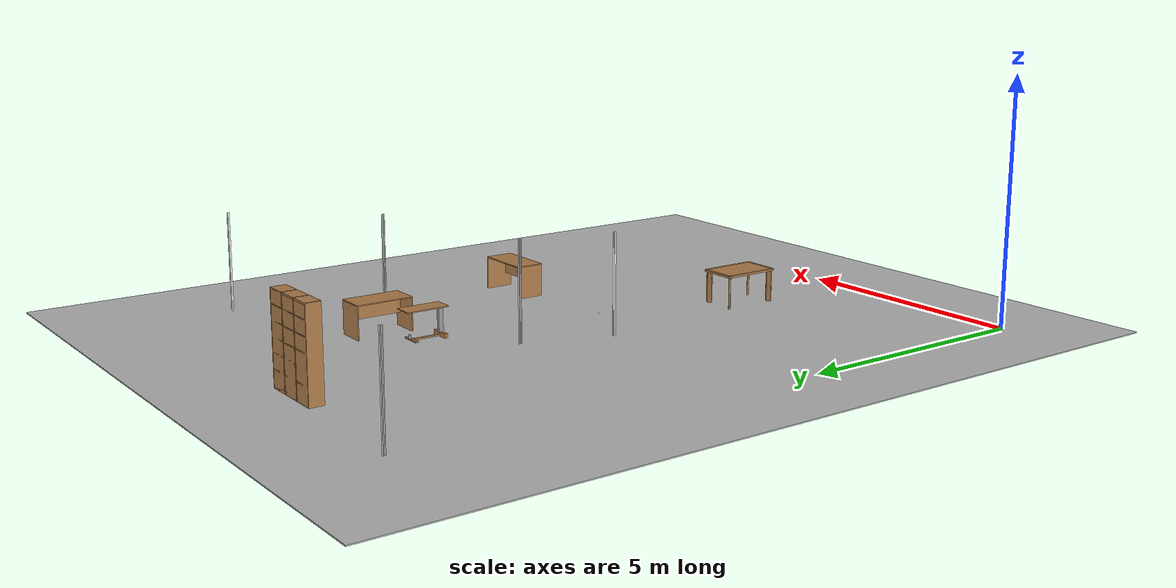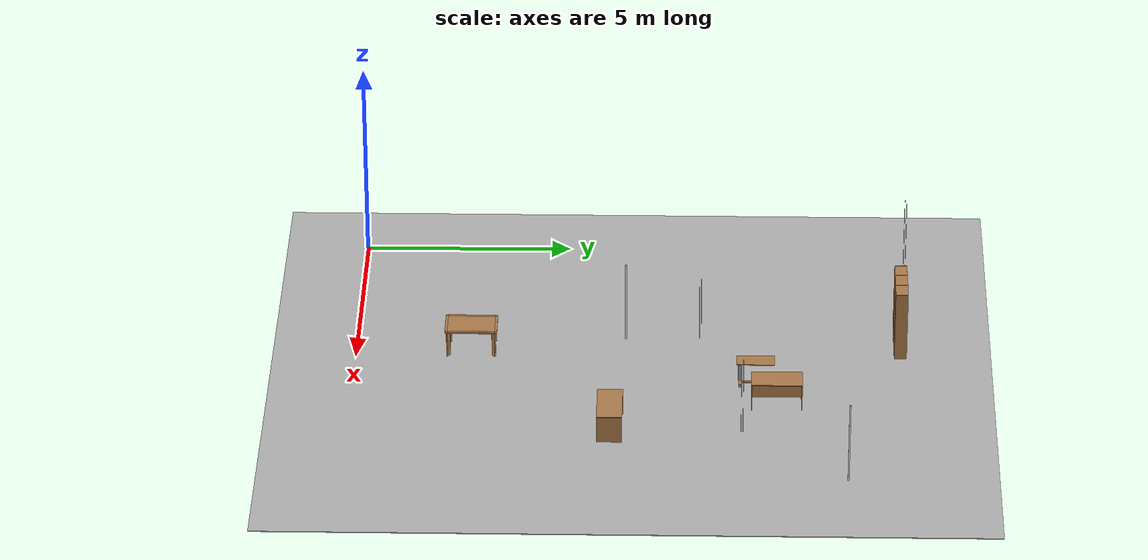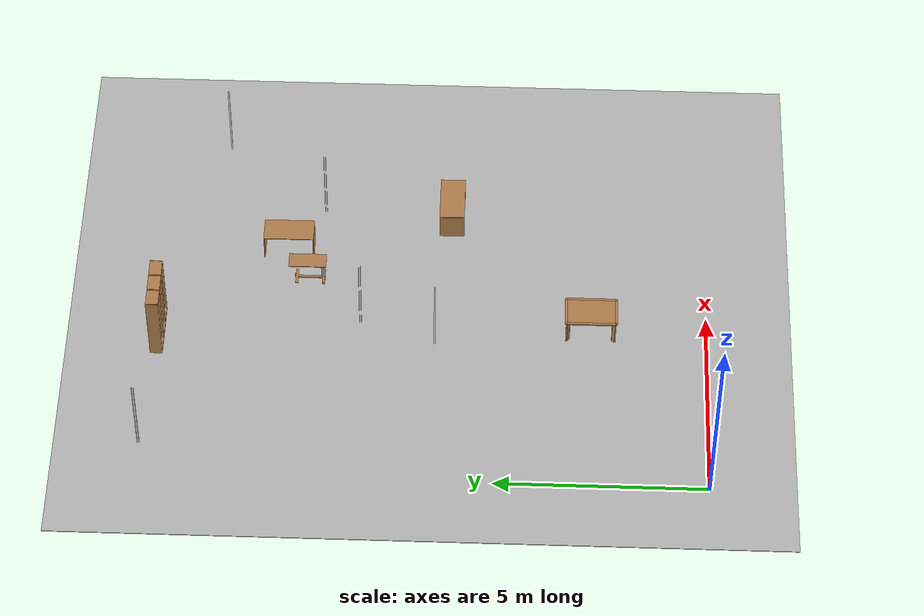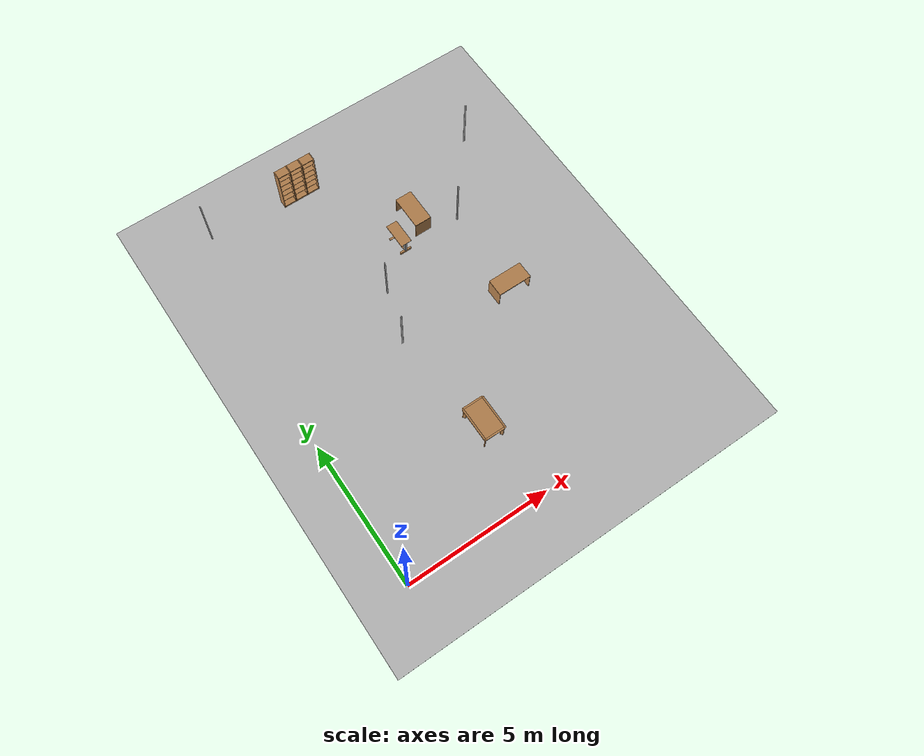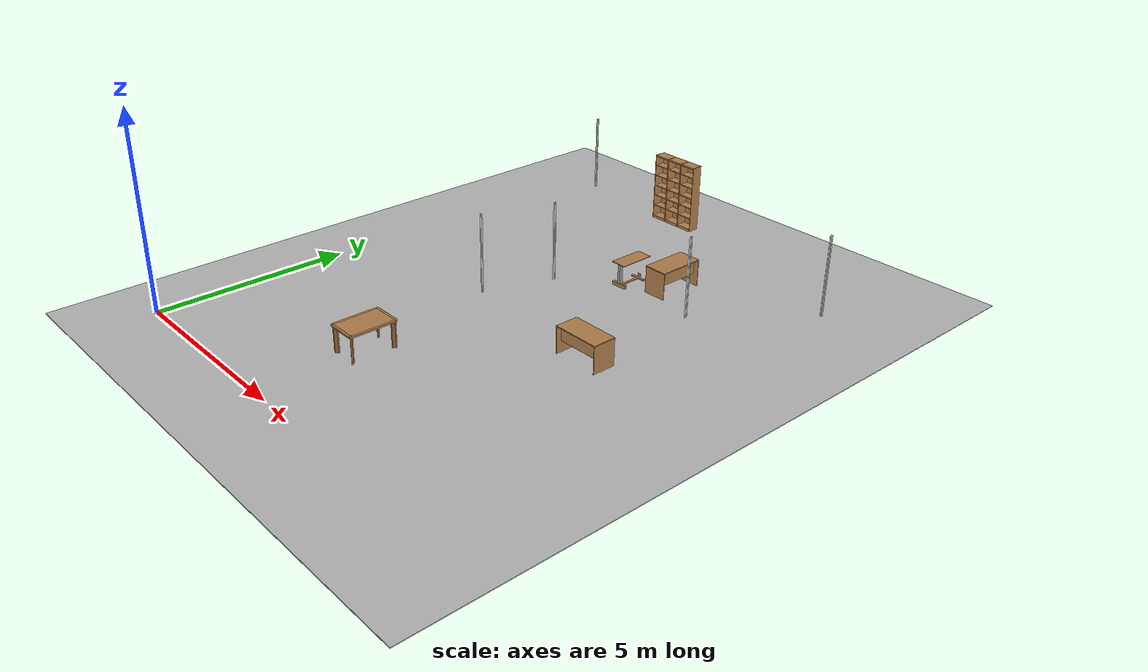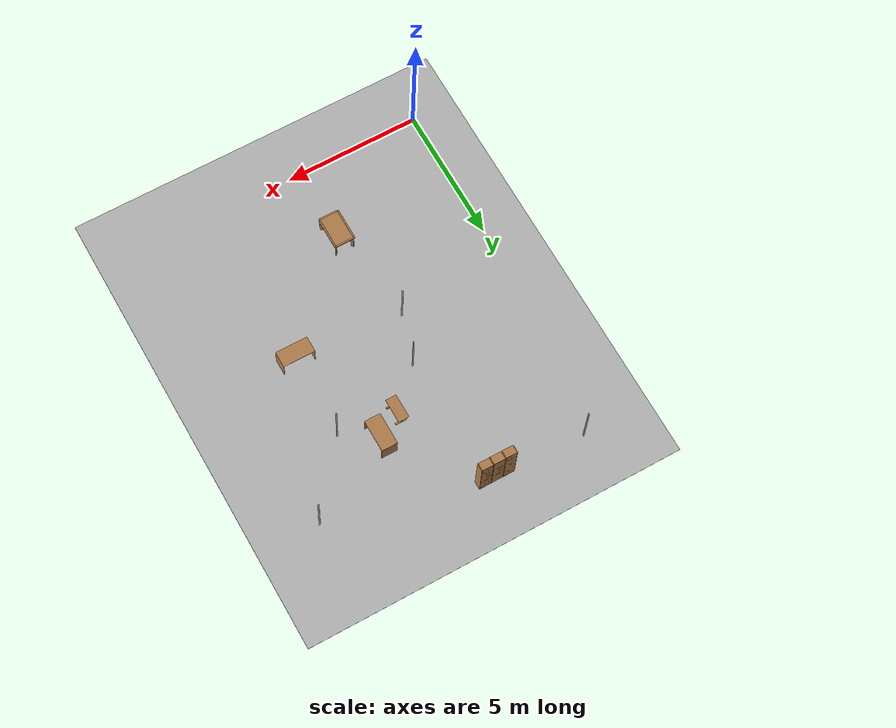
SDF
<sdf version="1.6">
 <world name="default">
  <model name="gplane">
   <pose>5.0375 6.59 0 0 -0 0</pose>
   <link name="body">
    <collision name="gplane_coll">
     <geometry><plane><normal>0 0 1</normal><size>10.075 13.18</size></plane></geometry>
     <surface><contact><ode><kp>1e+06</kp><kd>1</kd></ode></contact></surface>
     <laser_retro>2000</laser_retro>
    </collision>
    <visual name="gplane_vis">
     <geometry><plane><normal>0 0 1</normal><size>10.075 13.18</size></plane></geometry>
     <material>
      <script>
       <uri>model://base_materials/carpet/scripts</uri>
       <uri>model://base_materials/carpet/textures</uri>
       <name>carpet/carpet01</name>
      </script>
     </material>
     <cast_shadows>0</cast_shadows>
    </visual>
    <velocity_decay><linear>0</linear><angular>0</angular></velocity_decay>
   </link>
   <static>1</static>
  </model>
  <model name="door_stopper_x13y13">
   <link name="door_frame">
    <visual name="stopper">
     <pose>0.0225 0.0175 1.025 0 -0 0</pose>
     <geometry><box><size>0.01 0.035 2.05</size></box></geometry>
     <material>
      <script><uri>model://base_materials/color/scripts</uri><name>hsr_color/white</name></script>
     </material>
    </visual>
    <collision name="collision_frame_1">
     <pose>0.0225 0.0175 1.025 0 -0 0</pose>
     <geometry><box><size>0.01 0.035 2.05</size></box></geometry>
    </collision>
    <visual name="frame_2">
     <pose>-0.0225 0.0175 1.025 0 -0 0</pose>
     <geometry><box><size>0.01 0.035 2.05</size></box></geometry>
     <material>
      <script><uri>model://base_materials/color/scripts</uri><name>hsr_color/white</name></script>
     </material>
    </visual>
    <collision name="collision_frame_2">
     <pose>-0.0225 0.0175 1.025 0 -0 0</pose>
     <geometry><box><size>0.01 0.035 2.05</size></box></geometry>
    </collision>
   </link>
   <static>1</static>
   <pose>10.1025 11.67 0 0 -0 0</pose>
  </model>
  <model name="door_stopper_x02y16">
   <link name="door_frame">
    <visual name="stopper">
     <pose>0.0225 0.0175 1.025 0 -0 0</pose>
     <geometry><box><size>0.01 0.035 2.05</size></box></geometry>
     <material>
      <script><uri>model://base_materials/color/scripts</uri><name>hsr_color/white</name></script>
     </material>
    </visual>
    <collision name="collision_frame_1">
     <pose>0.0225 0.0175 1.025 0 -0 0</pose>
     <geometry><box><size>0.01 0.035 2.05</size></box></geometry>
    </collision>
    <visual name="frame_2">
     <pose>-0.0225 0.0175 1.025 0 -0 0</pose>
     <geometry><box><size>0.01 0.035 2.05</size></box></geometry>
     <material>
      <script><uri>model://base_materials/color/scripts</uri><name>hsr_color/white</name></script>
     </material>
    </visual>
    <collision name="collision_frame_2">
     <pose>-0.0225 0.0175 1.025 0 -0 0</pose>
     <geometry><box><size>0.01 0.035 2.05</size></box></geometry>
    </collision>
   </link>
   <static>1</static>
   <pose>0.93 13.2075 0 0 -0 1.5708</pose>
  </model>
  <model name="door_stopper_x05y09a">
   <link name="door_frame">
    <visual name="stopper">
     <pose>0.0225 0.0175 1.025 0 -0 0</pose>
     <geometry><box><size>0.01 0.035 2.05</size></box></geometry>
     <material>
      <script><uri>model://base_materials/color/scripts</uri><name>hsr_color/white</name></script>
     </material>
    </visual>
    <collision name="collision_frame_1">
     <pose>0.0225 0.0175 1.025 0 -0 0</pose>
     <geometry><box><size>0.01 0.035 2.05</size></box></geometry>
    </collision>
    <visual name="frame_2">
     <pose>-0.0225 0.0175 1.025 0 -0 0</pose>
     <geometry><box><size>0.01 0.035 2.05</size></box></geometry>
     <material>
      <script><uri>model://base_materials/color/scripts</uri><name>hsr_color/white</name></script>
     </material>
    </visual>
    <collision name="collision_frame_2">
     <pose>-0.0225 0.0175 1.025 0 -0 0</pose>
     <geometry><box><size>0.01 0.035 2.05</size></box></geometry>
    </collision>
   </link>
   <static>1</static>
   <pose>4.075 6.425 0 0 -0 0</pose>
  </model>
  <model name="door_stopper_x08y09a">
   <link name="door_frame">
    <visual name="stopper">
     <pose>0.0225 0.0175 1.025 0 -0 0</pose>
     <geometry><box><size>0.01 0.035 2.05</size></box></geometry>
     <material>
      <script><uri>model://base_materials/color/scripts</uri><name>hsr_color/white</name></script>
     </material>
    </visual>
    <collision name="collision_frame_1">
     <pose>0.0225 0.0175 1.025 0 -0 0</pose>
     <geometry><box><size>0.01 0.035 2.05</size></box></geometry>
    </collision>
    <visual name="frame_2">
     <pose>-0.0225 0.0175 1.025 0 -0 0</pose>
     <geometry><box><size>0.01 0.035 2.05</size></box></geometry>
     <material>
      <script><uri>model://base_materials/color/scripts</uri><name>hsr_color/white</name></script>
     </material>
    </visual>
    <collision name="collision_frame_2">
     <pose>-0.0225 0.0175 1.025 0 -0 0</pose>
     <geometry><box><size>0.01 0.035 2.05</size></box></geometry>
    </collision>
   </link>
   <static>1</static>
   <pose>4.675 8.23 0 0 -0 1.5708</pose>
  </model>
  <model name="door_stopper_x10y11">
   <link name="door_frame">
    <visual name="stopper">
     <pose>0.0225 0.0175 1.025 0 -0 0</pose>
     <geometry><box><size>0.01 0.035 2.05</size></box></geometry>
     <material>
      <script><uri>model://base_materials/color/scripts</uri><name>hsr_color/white</name></script>
     </material>
    </visual>
    <collision name="collision_frame_1">
     <pose>0.0225 0.0175 1.025 0 -0 0</pose>
     <geometry><box><size>0.01 0.035 2.05</size></box></geometry>
    </collision>
    <visual name="frame_2">
     <pose>-0.0225 0.0175 1.025 0 -0 0</pose>
     <geometry><box><size>0.01 0.035 2.05</size></box></geometry>
     <material>
      <script><uri>model://base_materials/color/scripts</uri><name>hsr_color/white</name></script>
     </material>
    </visual>
    <collision name="collision_frame_2">
     <pose>-0.0225 0.0175 1.025 0 -0 0</pose>
     <geometry><box><size>0.01 0.035 2.05</size></box></geometry>
    </collision>
   </link>
   <static>1</static>
   <pose>8.13 9.23 0 0 -0 1.5708</pose>
  </model>
  <model name="office_desk06">
   <link name="link">
    <inertial>
     <mass>10</mass>
     <inertia><ixx>1</ixx><ixy>0</ixy><ixz>0</ixz><iyy>1</iyy><iyz>0</iyz><izz>1</izz></inertia>
    </inertial>
    <visual name="top_board">
     <pose>-0.3 0.6 0.69 0 -0 0</pose>
     <geometry><box><size>0.6 1.2 0.02</size></box></geometry>
     <material>
      <script>
       <uri>model://base_materials/wood/scripts/wood.material</uri>
       <name>base_materials/dark_wood</name>
      </script>
     </material>
    </visual>
    <collision name="collision_top_board">
     <pose>-0.3 0.6 0.69 0 -0 0</pose>
     <geometry><box><size>0.6 1.2 0.02</size></box></geometry>
    </collision>
    <visual name="left_board">
     <pose>-0.3 0.01 0.34 0 -0 0</pose>
     <geometry><box><size>0.6 0.02 0.68</size></box></geometry>
     <material>
      <script>
       <uri>model://base_materials/wood/scripts/wood.material</uri>
       <name>base_materials/dark_wood</name>
      </script>
     </material>
    </visual>
    <collision name="collision_left_board">
     <pose>-0.3 0.01 0.34 0 -0 0</pose>
     <geometry><box><size>0.6 0.02 0.68</size></box></geometry>
    </collision>
    <visual name="right_board">
     <pose>-0.3 1.19 0.34 0 -0 0</pose>
     <geometry><box><size>0.6 0.02 0.68</size></box></geometry>
     <material>
      <script>
       <uri>model://base_materials/wood/scripts/wood.material</uri>
       <name>base_materials/dark_wood</name>
      </script>
     </material>
    </visual>
    <collision name="collision_right_board">
     <pose>-0.3 1.19 0.34 0 -0 0</pose>
     <geometry><box><size>0.6 0.02 0.68</size></box></geometry>
    </collision>
    <visual name="center_board">
     <pose>-0.14 0.6 0.49 0 -0 0</pose>
     <geometry><box><size>0.02 1.16 0.4</size></box></geometry>
     <material>
      <script>
       <uri>model://base_materials/wood/scripts/wood.material</uri>
       <name>base_materials/dark_wood</name>
      </script>
     </material>
    </visual>
    <collision name="ollision_center_board">
     <pose>-0.14 0.6 0.49 0 -0 0</pose>
     <geometry><box><size>0.02 1.16 0.4</size></box></geometry>
    </collision>
    <velocity_decay><linear>0</linear><angular>0</angular></velocity_decay>
   </link>
   <static>1</static>
   <pose>7.41852 5.83322 0 0 0 -1.5708</pose>
  </model>
  <model name="high_shelf01">
   <link name="link">
    <inertial>
     <mass>5</mass>
     <inertia><ixx>1</ixx><ixy>0</ixy><ixz>0</ixz><iyy>1</iyy><iyz>0</iyz><izz>1</izz></inertia>
    </inertial>
    <visual name="left_board">
     <pose>-0.1475 0.009 0.898 0 -0 0</pose>
     <geometry><box><size>0.295 0.018 1.796</size></box></geometry>
     <material>
      <script>
       <uri>model://base_materials/wood/scripts</uri>
       <uri>model://base_materials/wood/textures</uri>
       <name>base_materials/light_wood</name>
      </script>
     </material>
    </visual>
    <collision name="collision_left_board">
     <pose>-0.1475 0.009 0.898 0 -0 0</pose>
     <geometry><box><size>0.295 0.018 1.796</size></box></geometry>
    </collision>
    <visual name="right_board">
     <pose>-0.1475 0.441 0.898 0 -0 0</pose>
     <geometry><box><size>0.295 0.018 1.796</size></box></geometry>
     <material>
      <script>
       <uri>model://base_materials/wood/scripts</uri>
       <uri>model://base_materials/wood/textures</uri>
       <name>base_materials/light_wood</name>
      </script>
     </material>
    </visual>
    <collision name="collision_right_board">
     <pose>-0.1475 0.441 0.898 0 -0 0</pose>
     <geometry><box><size>0.295 0.018 1.796</size></box></geometry>
    </collision>
    <visual name="top_board">
     <pose>-0.1475 0.225 1.7825 0 -0 0</pose>
     <geometry><box><size>0.295 0.414 0.035</size></box></geometry>
     <material>
      <script>
       <uri>model://base_materials/wood/scripts</uri>
       <uri>model://base_materials/wood/textures</uri>
       <name>base_materials/light_wood</name>
      </script>
     </material>
    </visual>
    <collision name="collision_top_board">
     <pose>-0.1475 0.225 1.7825 0 -0 0</pose>
     <geometry><box><size>0.295 0.414 0.035</size></box></geometry>
    </collision>
    <visual name="1st_shelf">
     <pose>-0.162 0.225 1.51 0 -0 0</pose>
     <geometry><box><size>0.266 0.414 0.018</size></box></geometry>
     <material>
      <script>
       <uri>model://base_materials/wood/scripts</uri>
       <uri>model://base_materials/wood/textures</uri>
       <name>base_materials/light_wood</name>
      </script>
     </material>
    </visual>
    <collision name="collision_1st_shelf">
     <pose>-0.162 0.225 1.51 0 -0 0</pose>
     <geometry><box><size>0.266 0.414 0.018</size></box></geometry>
    </collision>
    <visual name="2nd_shelf">
     <pose>-0.162 0.225 1.22 0 -0 0</pose>
     <geometry><box><size>0.266 0.414 0.018</size></box></geometry>
     <material>
      <script>
       <uri>model://base_materials/wood/scripts</uri>
       <uri>model://base_materials/wood/textures</uri>
       <name>base_materials/light_wood</name>
      </script>
     </material>
    </visual>
    <collision name="collision_2nd_shelf">
     <pose>-0.162 0.225 1.22 0 -0 0</pose>
     <geometry><box><size>0.266 0.414 0.018</size></box></geometry>
    </collision>
    <visual name="3rd_shelf">
     <pose>-0.162 0.225 0.93 0 -0 0</pose>
     <geometry><box><size>0.266 0.414 0.018</size></box></geometry>
     <material>
      <script>
       <uri>model://base_materials/wood/scripts</uri>
       <uri>model://base_materials/wood/textures</uri>
       <name>base_materials/light_wood</name>
      </script>
     </material>
    </visual>
    <collision name="collision_3rd_shelf">
     <pose>-0.162 0.225 0.93 0 -0 0</pose>
     <geometry><box><size>0.266 0.414 0.018</size></box></geometry>
    </collision>
    <visual name="4th_shelf">
     <pose>-0.162 0.225 0.65 0 -0 0</pose>
     <geometry><box><size>0.266 0.414 0.018</size></box></geometry>
     <material>
      <script>
       <uri>model://base_materials/wood/scripts</uri>
       <uri>model://base_materials/wood/textures</uri>
       <name>base_materials/light_wood</name>
      </script>
     </material>
    </visual>
    <collision name="collision_4th_shelf">
     <pose>-0.162 0.225 0.65 0 -0 0</pose>
     <geometry><box><size>0.266 0.414 0.018</size></box></geometry>
    </collision>
    <visual name="5th_shelf">
     <pose>-0.162 0.225 0.36 0 -0 0</pose>
     <geometry><box><size>0.266 0.414 0.018</size></box></geometry>
     <material>
      <script>
       <uri>model://base_materials/wood/scripts</uri>
       <uri>model://base_materials/wood/textures</uri>
       <name>base_materials/light_wood</name>
      </script>
     </material>
    </visual>
    <collision name="collision_5th_shelf">
     <pose>-0.162 0.225 0.36 0 -0 0</pose>
     <geometry><box><size>0.266 0.414 0.018</size></box></geometry>
    </collision>
    <visual name="bottom_board">
     <pose>-0.1475 0.225 0.035 0 -0 0</pose>
     <geometry><box><size>0.295 0.414 0.07</size></box></geometry>
     <material>
      <script>
       <uri>model://base_materials/wood/scripts</uri>
       <uri>model://base_materials/wood/textures</uri>
       <name>base_materials/light_wood</name>
      </script>
     </material>
    </visual>
    <collision name="collision_bottom_board">
     <pose>-0.1475 0.225 0.035 0 -0 0</pose>
     <geometry><box><size>0.295 0.414 0.07</size></box></geometry>
    </collision>
    <visual name="back_board">
     <pose>-0.286 0.225 0.898 0 -0 0</pose>
     <geometry><box><size>0.018 0.414 1.796</size></box></geometry>
     <material>
      <script>
       <uri>model://base_materials/wood/scripts</uri>
       <uri>model://base_materials/wood/textures</uri>
       <name>base_materials/light_wood</name>
      </script>
     </material>
    </visual>
    <collision name="collision_back_board">
     <pose>-0.286 0.225 0.898 0 -0 0</pose>
     <geometry><box><size>0.018 0.414 1.796</size></box></geometry>
    </collision>
    <velocity_decay><linear>0</linear><angular>0</angular></velocity_decay>
   </link>
   <static>1</static>
   <pose>4.45 12.87 0 0 0 -1.5708</pose>
  </model>
  <model name="high_shelf02">
   <link name="link">
    <inertial>
     <mass>5</mass>
     <inertia><ixx>1</ixx><ixy>0</ixy><ixz>0</ixz><iyy>1</iyy><iyz>0</iyz><izz>1</izz></inertia>
    </inertial>
    <visual name="left_board">
     <pose>-0.1475 0.009 0.898 0 -0 0</pose>
     <geometry><box><size>0.295 0.018 1.796</size></box></geometry>
     <material>
      <script>
       <uri>model://base_materials/wood/scripts</uri>
       <uri>model://base_materials/wood/textures</uri>
       <name>base_materials/light_wood</name>
      </script>
     </material>
    </visual>
    <collision name="collision_left_board">
     <pose>-0.1475 0.009 0.898 0 -0 0</pose>
     <geometry><box><size>0.295 0.018 1.796</size></box></geometry>
    </collision>
    <visual name="right_board">
     <pose>-0.1475 0.441 0.898 0 -0 0</pose>
     <geometry><box><size>0.295 0.018 1.796</size></box></geometry>
     <material>
      <script>
       <uri>model://base_materials/wood/scripts</uri>
       <uri>model://base_materials/wood/textures</uri>
       <name>base_materials/light_wood</name>
      </script>
     </material>
    </visual>
    <collision name="collision_right_board">
     <pose>-0.1475 0.441 0.898 0 -0 0</pose>
     <geometry><box><size>0.295 0.018 1.796</size></box></geometry>
    </collision>
    <visual name="top_board">
     <pose>-0.1475 0.225 1.7825 0 -0 0</pose>
     <geometry><box><size>0.295 0.414 0.035</size></box></geometry>
     <material>
      <script>
       <uri>model://base_materials/wood/scripts</uri>
       <uri>model://base_materials/wood/textures</uri>
       <name>base_materials/light_wood</name>
      </script>
     </material>
    </visual>
    <collision name="collision_top_board">
     <pose>-0.1475 0.225 1.7825 0 -0 0</pose>
     <geometry><box><size>0.295 0.414 0.035</size></box></geometry>
    </collision>
    <visual name="1st_shelf">
     <pose>-0.162 0.225 1.51 0 -0 0</pose>
     <geometry><box><size>0.266 0.414 0.018</size></box></geometry>
     <material>
      <script>
       <uri>model://base_materials/wood/scripts</uri>
       <uri>model://base_materials/wood/textures</uri>
       <name>base_materials/light_wood</name>
      </script>
     </material>
    </visual>
    <collision name="collision_1st_shelf">
     <pose>-0.162 0.225 1.51 0 -0 0</pose>
     <geometry><box><size>0.266 0.414 0.018</size></box></geometry>
    </collision>
    <visual name="2nd_shelf">
     <pose>-0.162 0.225 1.22 0 -0 0</pose>
     <geometry><box><size>0.266 0.414 0.018</size></box></geometry>
     <material>
      <script>
       <uri>model://base_materials/wood/scripts</uri>
       <uri>model://base_materials/wood/textures</uri>
       <name>base_materials/light_wood</name>
      </script>
     </material>
    </visual>
    <collision name="collision_2nd_shelf">
     <pose>-0.162 0.225 1.22 0 -0 0</pose>
     <geometry><box><size>0.266 0.414 0.018</size></box></geometry>
    </collision>
    <visual name="3rd_shelf">
     <pose>-0.162 0.225 0.93 0 -0 0</pose>
     <geometry><box><size>0.266 0.414 0.018</size></box></geometry>
     <material>
      <script>
       <uri>model://base_materials/wood/scripts</uri>
       <uri>model://base_materials/wood/textures</uri>
       <name>base_materials/light_wood</name>
      </script>
     </material>
    </visual>
    <collision name="collision_3rd_shelf">
     <pose>-0.162 0.225 0.93 0 -0 0</pose>
     <geometry><box><size>0.266 0.414 0.018</size></box></geometry>
    </collision>
    <visual name="4th_shelf">
     <pose>-0.162 0.225 0.65 0 -0 0</pose>
     <geometry><box><size>0.266 0.414 0.018</size></box></geometry>
     <material>
      <script>
       <uri>model://base_materials/wood/scripts</uri>
       <uri>model://base_materials/wood/textures</uri>
       <name>base_materials/light_wood</name>
      </script>
     </material>
    </visual>
    <collision name="collision_4th_shelf">
     <pose>-0.162 0.225 0.65 0 -0 0</pose>
     <geometry><box><size>0.266 0.414 0.018</size></box></geometry>
    </collision>
    <visual name="5th_shelf">
     <pose>-0.162 0.225 0.36 0 -0 0</pose>
     <geometry><box><size>0.266 0.414 0.018</size></box></geometry>
     <material>
      <script>
       <uri>model://base_materials/wood/scripts</uri>
       <uri>model://base_materials/wood/textures</uri>
       <name>base_materials/light_wood</name>
      </script>
     </material>
    </visual>
    <collision name="collision_5th_shelf">
     <pose>-0.162 0.225 0.36 0 -0 0</pose>
     <geometry><box><size>0.266 0.414 0.018</size></box></geometry>
    </collision>
    <visual name="bottom_board">
     <pose>-0.1475 0.225 0.035 0 -0 0</pose>
     <geometry><box><size>0.295 0.414 0.07</size></box></geometry>
     <material>
      <script>
       <uri>model://base_materials/wood/scripts</uri>
       <uri>model://base_materials/wood/textures</uri>
       <name>base_materials/light_wood</name>
      </script>
     </material>
    </visual>
    <collision name="collision_bottom_board">
     <pose>-0.1475 0.225 0.035 0 -0 0</pose>
     <geometry><box><size>0.295 0.414 0.07</size></box></geometry>
    </collision>
    <visual name="back_board">
     <pose>-0.286 0.225 0.898 0 -0 0</pose>
     <geometry><box><size>0.018 0.414 1.796</size></box></geometry>
     <material>
      <script>
       <uri>model://base_materials/wood/scripts</uri>
       <uri>model://base_materials/wood/textures</uri>
       <name>base_materials/light_wood</name>
      </script>
     </material>
    </visual>
    <collision name="collision_back_board">
     <pose>-0.286 0.225 0.898 0 -0 0</pose>
     <geometry><box><size>0.018 0.414 1.796</size></box></geometry>
    </collision>
    <velocity_decay><linear>0</linear><angular>0</angular></velocity_decay>
   </link>
   <static>1</static>
   <pose>4 12.87 0 0 0 -1.5708</pose>
  </model>
  <model name="high_shelf03">
   <link name="link">
    <inertial>
     <mass>5</mass>
     <inertia><ixx>1</ixx><ixy>0</ixy><ixz>0</ixz><iyy>1</iyy><iyz>0</iyz><izz>1</izz></inertia>
    </inertial>
    <visual name="left_board">
     <pose>-0.1475 0.009 0.898 0 -0 0</pose>
     <geometry><box><size>0.295 0.018 1.796</size></box></geometry>
     <material>
      <script>
       <uri>model://base_materials/wood/scripts</uri>
       <uri>model://base_materials/wood/textures</uri>
       <name>base_materials/light_wood</name>
      </script>
     </material>
    </visual>
    <collision name="collision_left_board">
     <pose>-0.1475 0.009 0.898 0 -0 0</pose>
     <geometry><box><size>0.295 0.018 1.796</size></box></geometry>
    </collision>
    <visual name="right_board">
     <pose>-0.1475 0.441 0.898 0 -0 0</pose>
     <geometry><box><size>0.295 0.018 1.796</size></box></geometry>
     <material>
      <script>
       <uri>model://base_materials/wood/scripts</uri>
       <uri>model://base_materials/wood/textures</uri>
       <name>base_materials/light_wood</name>
      </script>
     </material>
    </visual>
    <collision name="collision_right_board">
     <pose>-0.1475 0.441 0.898 0 -0 0</pose>
     <geometry><box><size>0.295 0.018 1.796</size></box></geometry>
    </collision>
    <visual name="top_board">
     <pose>-0.1475 0.225 1.7825 0 -0 0</pose>
     <geometry><box><size>0.295 0.414 0.035</size></box></geometry>
     <material>
      <script>
       <uri>model://base_materials/wood/scripts</uri>
       <uri>model://base_materials/wood/textures</uri>
       <name>base_materials/light_wood</name>
      </script>
     </material>
    </visual>
    <collision name="collision_top_board">
     <pose>-0.1475 0.225 1.7825 0 -0 0</pose>
     <geometry><box><size>0.295 0.414 0.035</size></box></geometry>
    </collision>
    <visual name="1st_shelf">
     <pose>-0.162 0.225 1.51 0 -0 0</pose>
     <geometry><box><size>0.266 0.414 0.018</size></box></geometry>
     <material>
      <script>
       <uri>model://base_materials/wood/scripts</uri>
       <uri>model://base_materials/wood/textures</uri>
       <name>base_materials/light_wood</name>
      </script>
     </material>
    </visual>
    <collision name="collision_1st_shelf">
     <pose>-0.162 0.225 1.51 0 -0 0</pose>
     <geometry><box><size>0.266 0.414 0.018</size></box></geometry>
    </collision>
    <visual name="2nd_shelf">
     <pose>-0.162 0.225 1.22 0 -0 0</pose>
     <geometry><box><size>0.266 0.414 0.018</size></box></geometry>
     <material>
      <script>
       <uri>model://base_materials/wood/scripts</uri>
       <uri>model://base_materials/wood/textures</uri>
       <name>base_materials/light_wood</name>
      </script>
     </material>
    </visual>
    <collision name="collision_2nd_shelf">
     <pose>-0.162 0.225 1.22 0 -0 0</pose>
     <geometry><box><size>0.266 0.414 0.018</size></box></geometry>
    </collision>
    <visual name="3rd_shelf">
     <pose>-0.162 0.225 0.93 0 -0 0</pose>
     <geometry><box><size>0.266 0.414 0.018</size></box></geometry>
     <material>
      <script>
       <uri>model://base_materials/wood/scripts</uri>
       <uri>model://base_materials/wood/textures</uri>
       <name>base_materials/light_wood</name>
      </script>
     </material>
    </visual>
    <collision name="collision_3rd_shelf">
     <pose>-0.162 0.225 0.93 0 -0 0</pose>
     <geometry><box><size>0.266 0.414 0.018</size></box></geometry>
    </collision>
    <visual name="4th_shelf">
     <pose>-0.162 0.225 0.65 0 -0 0</pose>
     <geometry><box><size>0.266 0.414 0.018</size></box></geometry>
     <material>
      <script>
       <uri>model://base_materials/wood/scripts</uri>
       <uri>model://base_materials/wood/textures</uri>
       <name>base_materials/light_wood</name>
      </script>
     </material>
    </visual>
    <collision name="collision_4th_shelf">
     <pose>-0.162 0.225 0.65 0 -0 0</pose>
     <geometry><box><size>0.266 0.414 0.018</size></box></geometry>
    </collision>
    <visual name="5th_shelf">
     <pose>-0.162 0.225 0.36 0 -0 0</pose>
     <geometry><box><size>0.266 0.414 0.018</size></box></geometry>
     <material>
      <script>
       <uri>model://base_materials/wood/scripts</uri>
       <uri>model://base_materials/wood/textures</uri>
       <name>base_materials/light_wood</name>
      </script>
     </material>
    </visual>
    <collision name="collision_5th_shelf">
     <pose>-0.162 0.225 0.36 0 -0 0</pose>
     <geometry><box><size>0.266 0.414 0.018</size></box></geometry>
    </collision>
    <visual name="bottom_board">
     <pose>-0.1475 0.225 0.035 0 -0 0</pose>
     <geometry><box><size>0.295 0.414 0.07</size></box></geometry>
     <material>
      <script>
       <uri>model://base_materials/wood/scripts</uri>
       <uri>model://base_materials/wood/textures</uri>
       <name>base_materials/light_wood</name>
      </script>
     </material>
    </visual>
    <collision name="collision_bottom_board">
     <pose>-0.1475 0.225 0.035 0 -0 0</pose>
     <geometry><box><size>0.295 0.414 0.07</size></box></geometry>
    </collision>
    <visual name="back_board">
     <pose>-0.286 0.225 0.898 0 -0 0</pose>
     <geometry><box><size>0.018 0.414 1.796</size></box></geometry>
     <material>
      <script>
       <uri>model://base_materials/wood/scripts</uri>
       <uri>model://base_materials/wood/textures</uri>
       <name>base_materials/light_wood</name>
      </script>
     </material>
    </visual>
    <collision name="collision_back_board">
     <pose>-0.286 0.225 0.898 0 -0 0</pose>
     <geometry><box><size>0.018 0.414 1.796</size></box></geometry>
    </collision>
    <velocity_decay><linear>0</linear><angular>0</angular></velocity_decay>
   </link>
   <static>1</static>
   <pose>3.55 12.87 0 0 0 -1.5708</pose>
  </model>
  <model name="lawn_garden">
   <link name="link">
    <inertial>
     <mass>10</mass>
     <inertia><ixx>1</ixx><ixy>0</ixy><ixz>0</ixz><iyy>1</iyy><iyz>0</iyz><izz>1</izz></inertia>
    </inertial>
    <visual name="lawn_garden">
     <pose>0 0 -0.011 0 -0 0</pose>
     <geometry><box><size>14.075 17.185 0.02</size></box></geometry>
     <material>
      <script>
       <uri>model://base_materials/lawn/scripts/lawn.material</uri>
       <uri>model://base_materials/lawn/textures</uri>
       <name>lawn/lawn01</name>
      </script>
     </material>
    </visual>
    <collision name="collision_lawn_garden">
     <pose>0 0 -0.011 0 -0 0</pose>
     <geometry><box><size>14.075 17.185 0.02</size></box></geometry>
    </collision>
    <velocity_decay><linear>0</linear><angular>0</angular></velocity_decay>
   </link>
   <static>1</static>
   <pose>5.375 6.59 0 0 -0 0</pose>
  </model>
  <model name="ball_bearing">
   <link name="link">
    <pose>0 0 0.003 0 -0 0</pose>
    <inertial>
     <mass>0.0011</mass>
     <inertia>
      <ixx>3.96e-09</ixx>
      <ixy>0</ixy>
      <ixz>0</ixz>
      <iyy>3.96e-09</iyy>
      <iyz>0</iyz>
      <izz>3.96e-09</izz>
     </inertia>
    </inertial>
    <collision name="collision">
     <geometry><sphere><radius>0.003</radius></sphere></geometry>
     <surface>
      <contact>
       <poissons_ratio>0.305</poissons_ratio>
       <elastic_modulus>2e+11</elastic_modulus>
       <ode><kp>100000</kp><kd>100</kd><max_vel>100</max_vel><min_depth>0.001</min_depth></ode>
      </contact>
      <friction>
       <torsional>
        <coefficient>1</coefficient>
        <use_patch_radius>0</use_patch_radius>
        <surface_radius>0.01</surface_radius>
       </torsional>
      </friction>
     </surface>
    </collision>
    <visual name="visual">
     <geometry><sphere><radius>0.003</radius></sphere></geometry>
     <material>
      <script><uri>file://media/materials/scripts/gazebo.material</uri><name>Gazebo/Grey</name></script>
     </material>
    </visual>
    <velocity_decay><linear>0</linear><angular>0.005</angular></velocity_decay>
   </link>
   <pose>5.54717 5.7116 -0.001 0 -0 0</pose>
  </model>
  <model name="bed_table">
   <link name="link">
    <inertial>
     <pose>0 0.449 0.001 0 -0 0</pose>
     <mass>10</mass>
     <inertia><ixx>1</ixx><ixy>0</ixy><ixz>0</ixz><iyy>1</iyy><iyz>0</iyz><izz>1</izz></inertia>
    </inertial>
    <visual name="top_board">
     <pose>0 0.449 0.625 0 -0 0</pose>
     <geometry><box><size>0.398 0.898 0.02</size></box></geometry>
     <material>
      <script><uri>model://base_materials/wood/scripts/wood.material</uri><name>base_materials/wood</name></script>
     </material>
    </visual>
    <collision name="collision_top_board">
     <pose>0 0.449 0.625 0 -0 0</pose>
     <geometry><box><size>0.398 0.898 0.02</size></box></geometry>
    </collision>
    <visual name="right_pole">
     <pose>0 0.817 0.3515 0 -0 0</pose>
     <geometry><box><size>0.072 0.094 0.527</size></box></geometry>
     <material>
      <script><uri>model://base_materials/color/scripts</uri><name>hsr_color/grey</name></script>
     </material>
    </visual>
    <collision name="collision_right_pole">
     <pose>0 0.817 0.3515 0 -0 0</pose>
     <geometry><box><size>0.072 0.094 0.527</size></box></geometry>
    </collision>
    <visual name="right_bottom_pole">
     <pose>0 0.8225 0.044 0 -0 0</pose>
     <geometry><box><size>0.42 0.063 0.088</size></box></geometry>
     <material>
      <script><uri>model://base_materials/wood/scripts/wood.material</uri><name>base_materials/wood</name></script>
     </material>
    </visual>
    <collision name="collision_right_bottom_pole">
     <pose>0 0.8225 0.044 0 -0 0</pose>
     <geometry><box><size>0.42 0.063 0.088</size></box></geometry>
    </collision>
    <visual name="bottom_center_pole">
     <pose>0 0.502 0.03 0 -0 0</pose>
     <geometry><box><size>0.06 0.578 0.03</size></box></geometry>
     <material>
      <script><uri>model://base_materials/wood/scripts/wood.material</uri><name>base_materials/wood</name></script>
     </material>
    </visual>
    <collision name="collision_bottom_center_pole">
     <pose>0 0.502 0.03 0 -0 0</pose>
     <geometry><box><size>0.06 0.578 0.03</size></box></geometry>
    </collision>
    <visual name="left_bottom_pole">
     <pose>0 0.18 0.0325 0 -0 0</pose>
     <geometry><box><size>0.418 0.066 0.025</size></box></geometry>
     <material>
      <script><uri>model://base_materials/wood/scripts/wood.material</uri><name>base_materials/wood</name></script>
     </material>
    </visual>
    <collision name="collision_left_bottom_pole">
     <pose>0 0.18 0.0325 0 -0 0</pose>
     <geometry><box><size>0.418 0.066 0.025</size></box></geometry>
    </collision>
    <visual name="marker_0010">
     <pose>0 0.14 0.093 0 -0 0</pose>
     <geometry><box><size>0.09 0.001 0.09</size></box></geometry>
     <material>
      <script>
       <uri>model://bed_table/marker/0010/scripts</uri>
       <uri>model://bed_table/marker/0010/textures</uri>
       <name>Marker/0010</name>
      </script>
     </material>
    </visual>
    <collision name="collision_marker_0010">
     <pose>0 0.14 0.093 0 -0 0</pose>
     <geometry><box><size>0.09 0.001 0.09</size></box></geometry>
    </collision>
    <visual name="marker_0010_back_plate">
     <pose>0 0.146 0.093 0 -0 0</pose>
     <geometry><box><size>0.09 0.01 0.09</size></box></geometry>
     <material>
      <script><uri>model://base_materials/wood/scripts/wood.material</uri><name>base_materials/wood</name></script>
     </material>
    </visual>
    <collision name="collision_marker_0010_back_plate">
     <pose>0 0.146 0.093 0 -0 0</pose>
     <geometry><box><size>0.09 0.01 0.09</size></box></geometry>
    </collision>
    <velocity_decay><linear>0</linear><angular>0</angular></velocity_decay>
   </link>
   <static>1</static>
   <pose>6 10 0 0 0 -3.14159</pose>
  </model>
  <model name="kitchen_table">
   <link name="link">
    <inertial>
     <mass>10</mass>
     <inertia><ixx>1</ixx><ixy>0</ixy><ixz>0</ixz><iyy>1</iyy><iyz>0</iyz><izz>1</izz></inertia>
    </inertial>
    <visual name="center_board">
     <pose>0 0 0.68 0 -0 0</pose>
     <geometry><box><size>0.68 1.13 0.04</size></box></geometry>
     <material>
      <script><uri>model://base_materials/wood/scripts/wood.material</uri><name>base_materials/wood</name></script>
     </material>
    </visual>
    <collision name="collision_center_board">
     <pose>0 0 0.68 0 -0 0</pose>
     <geometry><box><size>0.68 1.13 0.04</size></box></geometry>
    </collision>
    <visual name="front_board">
     <pose>0.37 0 0.68 0 -0 0</pose>
     <geometry><box><size>0.06 1.13 0.04</size></box></geometry>
     <material>
      <script><uri>model://base_materials/wood/scripts/wood.material</uri><name>base_materials/wood</name></script>
     </material>
    </visual>
    <collision name="collision_front_board">
     <pose>0.37 0 0.68 0 -0 0</pose>
     <geometry><box><size>0.06 1.13 0.04</size></box></geometry>
    </collision>
    <visual name="back_board">
     <pose>-0.37 0 0.68 0 -0 0</pose>
     <geometry><box><size>0.06 1.13 0.04</size></box></geometry>
     <material>
      <script><uri>model://base_materials/wood/scripts/wood.material</uri><name>base_materials/wood</name></script>
     </material>
    </visual>
    <collision name="collision_back_board">
     <pose>-0.37 0 0.68 0 -0 0</pose>
     <geometry><box><size>0.06 1.13 0.04</size></box></geometry>
    </collision>
    <visual name="right_board">
     <pose>0 0.595 0.68 0 -0 0</pose>
     <geometry><box><size>0.68 0.06 0.04</size></box></geometry>
     <material>
      <script><uri>model://base_materials/wood/scripts/wood.material</uri><name>base_materials/wood</name></script>
     </material>
    </visual>
    <collision name="collision_right_board">
     <pose>0 0.595 0.68 0 -0 0</pose>
     <geometry><box><size>0.68 0.06 0.04</size></box></geometry>
    </collision>
    <visual name="left_board">
     <pose>0 -0.595 0.68 0 -0 0</pose>
     <geometry><box><size>0.68 0.06 0.04</size></box></geometry>
     <material>
      <script><uri>model://base_materials/wood/scripts/wood.material</uri><name>base_materials/wood</name></script>
     </material>
    </visual>
    <collision name="collision_left_board">
     <pose>0 -0.595 0.68 0 -0 0</pose>
     <geometry><box><size>0.68 0.06 0.04</size></box></geometry>
    </collision>
    <visual name="front_right_corner_board">
     <pose>0.34 0.565 0.68 0 -0 0</pose>
     <geometry><cylinder><radius>0.06</radius><length>0.039</length></cylinder></geometry>
     <material>
      <script><uri>model://base_materials/wood/scripts/wood.material</uri><name>base_materials/wood</name></script>
     </material>
    </visual>
    <collision name="collision_front_right_corner_board">
     <pose>0.34 0.565 0.68 0 -0 0</pose>
     <geometry><cylinder><radius>0.06</radius><length>0.039</length></cylinder></geometry>
    </collision>
    <visual name="front_left_corner_board">
     <pose>0.34 -0.565 0.68 0 -0 0</pose>
     <geometry><cylinder><radius>0.06</radius><length>0.039</length></cylinder></geometry>
     <material>
      <script><uri>model://base_materials/wood/scripts/wood.material</uri><name>base_materials/wood</name></script>
     </material>
    </visual>
    <collision name="collision_front_left_corner_board">
     <pose>0.34 -0.565 0.68 0 -0 0</pose>
     <geometry><cylinder><radius>0.06</radius><length>0.039</length></cylinder></geometry>
    </collision>
    <visual name="front_back_right_corner_board">
     <pose>-0.34 0.565 0.68 0 -0 0</pose>
     <geometry><cylinder><radius>0.06</radius><length>0.039</length></cylinder></geometry>
     <material>
      <script><uri>model://base_materials/wood/scripts/wood.material</uri><name>base_materials/wood</name></script>
     </material>
    </visual>
    <collision name="collision_back_right_corner_board">
     <pose>-0.34 0.565 0.68 0 -0 0</pose>
     <geometry><cylinder><radius>0.06</radius><length>0.039</length></cylinder></geometry>
    </collision>
    <visual name="front_back_left_corner_board">
     <pose>-0.34 -0.565 0.68 0 -0 0</pose>
     <geometry><cylinder><radius>0.06</radius><length>0.039</length></cylinder></geometry>
     <material>
      <script><uri>model://base_materials/wood/scripts/wood.material</uri><name>base_materials/wood</name></script>
     </material>
    </visual>
    <collision name="collision_back_left_corner_board">
     <pose>-0.34 -0.565 0.68 0 -0 0</pose>
     <geometry><cylinder><radius>0.06</radius><length>0.039</length></cylinder></geometry>
    </collision>
    <visual name="front_left_corner_frame1">
     <pose>0.345858 -0.57086 0.33 0 -0 0</pose>
     <geometry><cylinder><radius>0.02</radius><length>0.66</length></cylinder></geometry>
     <material>
      <script><uri>model://base_materials/wood/scripts/wood.material</uri><name>base_materials/wood</name></script>
     </material>
    </visual>
    <collision name="collision_front_left_corner_frame1">
     <pose>0.345858 -0.57086 0.33 0 -0 0</pose>
     <geometry><cylinder><radius>0.02</radius><length>0.66</length></cylinder></geometry>
    </collision>
    <visual name="front_left_corner_frame2">
     <pose>0.317574 -0.54257 0.33 0 -0 0.7854</pose>
     <geometry><box><size>0.04 0.08 0.66</size></box></geometry>
     <material>
      <script><uri>model://base_materials/wood/scripts/wood.material</uri><name>base_materials/wood</name></script>
     </material>
    </visual>
    <collision name="collision_front_left_corner_frame2">
     <pose>0.317574 -0.54257 0.33 0 -0 0.7854</pose>
     <geometry><box><size>0.04 0.08 0.66</size></box></geometry>
    </collision>
    <visual name="front_left_corner_frame3">
     <pose>0.289289 -0.51429 0.33 0 -0 0</pose>
     <geometry><cylinder><radius>0.02</radius><length>0.66</length></cylinder></geometry>
     <material>
      <script><uri>model://base_materials/wood/scripts/wood.material</uri><name>base_materials/wood</name></script>
     </material>
    </visual>
    <collision name="collision_front_left_corner_frame3">
     <pose>0.289289 -0.51429 0.33 0 -0 0</pose>
     <geometry><cylinder><radius>0.02</radius><length>0.66</length></cylinder></geometry>
    </collision>
    <visual name="front_right_corner_frame1">
     <pose>0.345858 0.57086 0.33 0 -0 0</pose>
     <geometry><cylinder><radius>0.02</radius><length>0.66</length></cylinder></geometry>
     <material>
      <script><uri>model://base_materials/wood/scripts/wood.material</uri><name>base_materials/wood</name></script>
     </material>
    </visual>
    <collision name="collision_front_right_corner_frame1">
     <pose>0.345858 0.57086 0.33 0 -0 0</pose>
     <geometry><cylinder><radius>0.02</radius><length>0.66</length></cylinder></geometry>
    </collision>
    <visual name="front_right_corner_frame2">
     <pose>0.317574 0.54257 0.33 0 0 -0.7854</pose>
     <geometry><box><size>0.04 0.08 0.66</size></box></geometry>
     <material>
      <script><uri>model://base_materials/wood/scripts/wood.material</uri><name>base_materials/wood</name></script>
     </material>
    </visual>
    <collision name="collision_front_right_corner_frame2">
     <pose>0.317574 0.54257 0.33 0 0 -0.7854</pose>
     <geometry><box><size>0.04 0.08 0.66</size></box></geometry>
    </collision>
    <visual name="front_right_corner_frame3">
     <pose>0.289289 0.51429 0.33 0 -0 0</pose>
     <geometry><cylinder><radius>0.02</radius><length>0.66</length></cylinder></geometry>
     <material>
      <script><uri>model://base_materials/wood/scripts/wood.material</uri><name>base_materials/wood</name></script>
     </material>
    </visual>
    <collision name="collision_front_right_corner_frame3">
     <pose>0.289289 0.51429 0.33 0 -0 0</pose>
     <geometry><cylinder><radius>0.02</radius><length>0.66</length></cylinder></geometry>
    </collision>
    <visual name="back_left_corner_frame1">
     <pose>-0.345858 -0.57086 0.33 0 -0 0</pose>
     <geometry><cylinder><radius>0.02</radius><length>0.66</length></cylinder></geometry>
     <material>
      <script><uri>model://base_materials/wood/scripts/wood.material</uri><name>base_materials/wood</name></script>
     </material>
    </visual>
    <collision name="collision_back_left_corner_frame1">
     <pose>-0.345858 -0.57086 0.33 0 -0 0</pose>
     <geometry><cylinder><radius>0.02</radius><length>0.66</length></cylinder></geometry>
    </collision>
    <visual name="back_left_corner_frame2">
     <pose>-0.317574 -0.54257 0.33 0 0 -0.7854</pose>
     <geometry><box><size>0.04 0.08 0.66</size></box></geometry>
     <material>
      <script><uri>model://base_materials/wood/scripts/wood.material</uri><name>base_materials/wood</name></script>
     </material>
    </visual>
    <collision name="collision_back_left_corner_frame2">
     <pose>-0.317574 -0.54257 0.33 0 0 -0.7854</pose>
     <geometry><box><size>0.04 0.08 0.66</size></box></geometry>
    </collision>
    <visual name="back_left_corner_frame3">
     <pose>-0.289289 -0.51429 0.33 0 -0 0</pose>
     <geometry><cylinder><radius>0.02</radius><length>0.66</length></cylinder></geometry>
     <material>
      <script><uri>model://base_materials/wood/scripts/wood.material</uri><name>base_materials/wood</name></script>
     </material>
    </visual>
    <collision name="collision_back_left_corner_frame3">
     <pose>-0.289289 -0.51429 0.33 0 -0 0</pose>
     <geometry><cylinder><radius>0.02</radius><length>0.66</length></cylinder></geometry>
    </collision>
    <visual name="back_right_corner_frame1">
     <pose>-0.345858 0.57086 0.33 0 -0 0</pose>
     <geometry><cylinder><radius>0.02</radius><length>0.66</length></cylinder></geometry>
     <material>
      <script><uri>model://base_materials/wood/scripts/wood.material</uri><name>base_materials/wood</name></script>
     </material>
    </visual>
    <collision name="collision_back_right_corner_frame1">
     <pose>-0.345858 0.57086 0.33 0 -0 0</pose>
     <geometry><cylinder><radius>0.02</radius><length>0.66</length></cylinder></geometry>
    </collision>
    <visual name="back_right_corner_frame2">
     <pose>-0.317574 0.54257 0.33 0 -0 0.7854</pose>
     <geometry><box><size>0.04 0.08 0.66</size></box></geometry>
     <material>
      <script><uri>model://base_materials/wood/scripts/wood.material</uri><name>base_materials/wood</name></script>
     </material>
    </visual>
    <collision name="collision_back_right_corner_frame2">
     <pose>-0.317574 0.54257 0.33 0 -0 0.7854</pose>
     <geometry><box><size>0.04 0.08 0.66</size></box></geometry>
    </collision>
    <visual name="back_right_corner_frame3">
     <pose>-0.289289 0.51429 0.33 0 -0 0</pose>
     <geometry><cylinder><radius>0.02</radius><length>0.66</length></cylinder></geometry>
     <material>
      <script><uri>model://base_materials/wood/scripts/wood.material</uri><name>base_materials/wood</name></script>
     </material>
    </visual>
    <collision name="collision_back_right_corner_frame3">
     <pose>-0.289289 0.51429 0.33 0 -0 0</pose>
     <geometry><cylinder><radius>0.02</radius><length>0.66</length></cylinder></geometry>
    </collision>
    <velocity_decay><linear>0</linear><angular>0</angular></velocity_decay>
   </link>
   <static>1</static>
   <pose>4.59755 2.75327 0 0 -0 0</pose>
  </model>
  <model name="office_desk">
   <link name="link">
    <inertial>
     <mass>10</mass>
     <inertia><ixx>1</ixx><ixy>0</ixy><ixz>0</ixz><iyy>1</iyy><iyz>0</iyz><izz>1</izz></inertia>
    </inertial>
    <visual name="top_board">
     <pose>-0.3 0.6 0.69 0 -0 0</pose>
     <geometry><box><size>0.6 1.2 0.02</size></box></geometry>
     <material>
      <script>
       <uri>model://base_materials/wood/scripts/wood.material</uri>
       <name>base_materials/dark_wood</name>
      </script>
     </material>
    </visual>
    <collision name="collision_top_board">
     <pose>-0.3 0.6 0.69 0 -0 0</pose>
     <geometry><box><size>0.6 1.2 0.02</size></box></geometry>
    </collision>
    <visual name="left_board">
     <pose>-0.3 0.01 0.34 0 -0 0</pose>
     <geometry><box><size>0.6 0.02 0.68</size></box></geometry>
     <material>
      <script>
       <uri>model://base_materials/wood/scripts/wood.material</uri>
       <name>base_materials/dark_wood</name>
      </script>
     </material>
    </visual>
    <collision name="collision_left_board">
     <pose>-0.3 0.01 0.34 0 -0 0</pose>
     <geometry><box><size>0.6 0.02 0.68</size></box></geometry>
    </collision>
    <visual name="right_board">
     <pose>-0.3 1.19 0.34 0 -0 0</pose>
     <geometry><box><size>0.6 0.02 0.68</size></box></geometry>
     <material>
      <script>
       <uri>model://base_materials/wood/scripts/wood.material</uri>
       <name>base_materials/dark_wood</name>
      </script>
     </material>
    </visual>
    <collision name="collision_right_board">
     <pose>-0.3 1.19 0.34 0 -0 0</pose>
     <geometry><box><size>0.6 0.02 0.68</size></box></geometry>
    </collision>
    <visual name="center_board">
     <pose>-0.14 0.6 0.49 0 -0 0</pose>
     <geometry><box><size>0.02 1.16 0.4</size></box></geometry>
     <material>
      <script>
       <uri>model://base_materials/wood/scripts/wood.material</uri>
       <name>base_materials/dark_wood</name>
      </script>
     </material>
    </visual>
    <collision name="ollision_center_board">
     <pose>-0.14 0.6 0.49 0 -0 0</pose>
     <geometry><box><size>0.02 1.16 0.4</size></box></geometry>
    </collision>
    <velocity_decay><linear>0</linear><angular>0</angular></velocity_decay>
   </link>
   <static>1</static>
   <pose>7.19416 9.44822 0 0 -0 0</pose>
  </model>
 </world>
</sdf>
